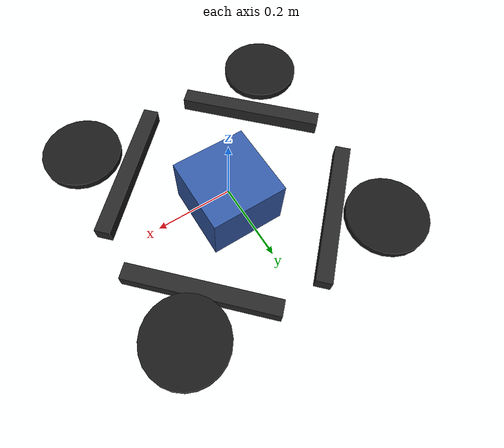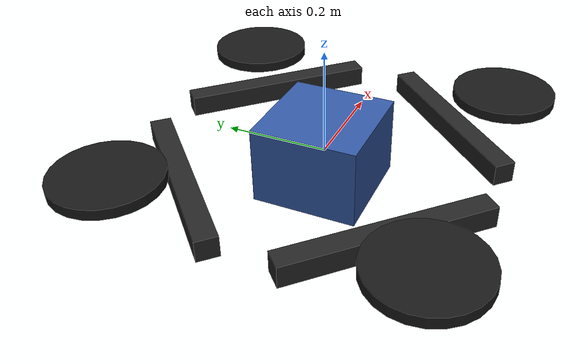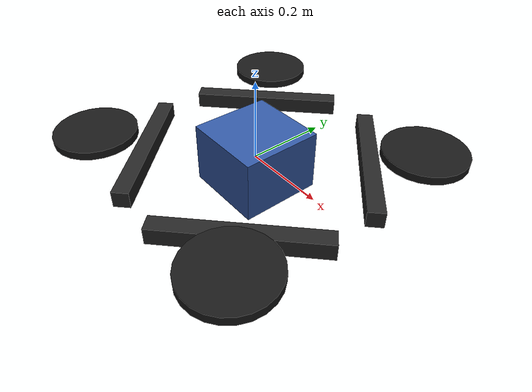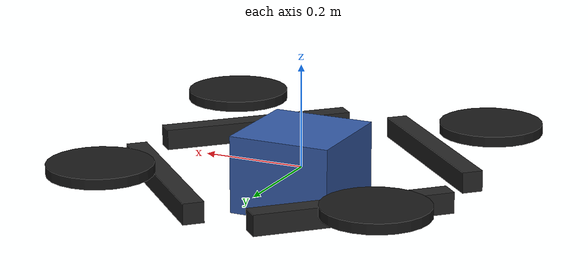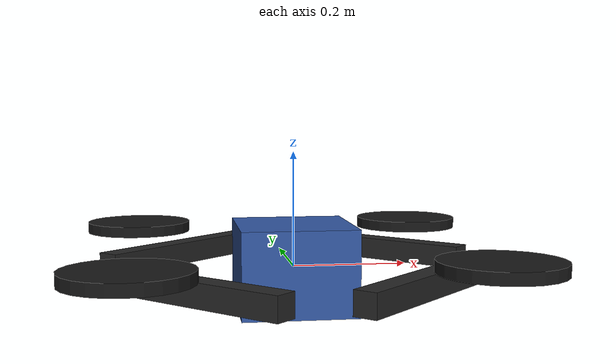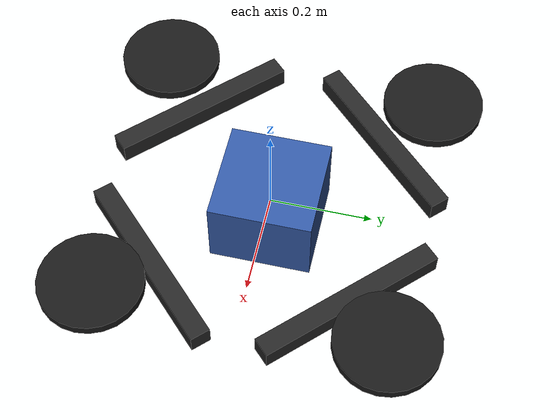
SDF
<?xml version="1.0"?>
<sdf version="1.6">
  <model name="drop_uav">

    <link name="base_link">

      <!-- ── Inertia (X500: mass 2 kg, box approximation) ──────────────── -->
      <inertial>
        <mass>2.0</mass>
        <pose>0 0 0 0 0 0</pose>
        <inertia>
          <!-- Solid box: I = m/12 * (a²+b²) -->
          <ixx>0.0256</ixx>
          <iyy>0.0256</iyy>
          <izz>0.0504</izz>
          <ixy>0</ixy>
          <ixz>0</ixz>
          <iyz>0</iyz>
        </inertia>
      </inertial>

      <!-- ── Collision geometry (main body box) ────────────────────────── -->
      <collision name="collision">
        <geometry>
          <box><size>0.55 0.55 0.15</size></box>
        </geometry>
        <surface>
          <friction>
            <ode><mu>0.5</mu><mu2>0.5</mu2></ode>
          </friction>
          <contact>
            <ode>
              <!-- Soft contact: realistic for composite UAV frame -->
              <kp>1e5</kp>
              <kd>1e3</kd>
            </ode>
          </contact>
        </surface>
      </collision>

      <!-- ── Visuals ───────────────────────────────────────────────────── -->

      <!-- Central body -->
      <visual name="body">
        <geometry>
          <box><size>0.20 0.20 0.15</size></box>
        </geometry>
        <material>
          <ambient>0.20 0.35 0.65 1</ambient>
          <diffuse>0.20 0.35 0.65 1</diffuse>
          <specular>0.1 0.1 0.1 1</specular>
        </material>
      </visual>

      <!-- Arm: front-right -->
      <visual name="arm_fr">
        <pose>0.19 -0.19 0 0 0 0.785</pose>
        <geometry><box><size>0.38 0.04 0.04</size></box></geometry>
        <material><ambient>0.15 0.15 0.15 1</ambient></material>
      </visual>
      <!-- Arm: front-left -->
      <visual name="arm_fl">
        <pose>0.19 0.19 0 0 0 -0.785</pose>
        <geometry><box><size>0.38 0.04 0.04</size></box></geometry>
        <material><ambient>0.15 0.15 0.15 1</ambient></material>
      </visual>
      <!-- Arm: rear-right -->
      <visual name="arm_rr">
        <pose>-0.19 -0.19 0 0 0 -0.785</pose>
        <geometry><box><size>0.38 0.04 0.04</size></box></geometry>
        <material><ambient>0.15 0.15 0.15 1</ambient></material>
      </visual>
      <!-- Arm: rear-left -->
      <visual name="arm_rl">
        <pose>-0.19 0.19 0 0 0 0.785</pose>
        <geometry><box><size>0.38 0.04 0.04</size></box></geometry>
        <material><ambient>0.15 0.15 0.15 1</ambient></material>
      </visual>

      <!-- Motor discs (four) -->
      <visual name="motor_fr">
        <pose>0.275 -0.275 0.04 0 0 0</pose>
        <geometry><cylinder><radius>0.10</radius><length>0.02</length></cylinder></geometry>
        <material><ambient>0.1 0.1 0.1 1</ambient></material>
      </visual>
      <visual name="motor_fl">
        <pose>0.275 0.275 0.04 0 0 0</pose>
        <geometry><cylinder><radius>0.10</radius><length>0.02</length></cylinder></geometry>
        <material><ambient>0.1 0.1 0.1 1</ambient></material>
      </visual>
      <visual name="motor_rr">
        <pose>-0.275 -0.275 0.04 0 0 0</pose>
        <geometry><cylinder><radius>0.10</radius><length>0.02</length></cylinder></geometry>
        <material><ambient>0.1 0.1 0.1 1</ambient></material>
      </visual>
      <visual name="motor_rl">
        <pose>-0.275 0.275 0.04 0 0 0</pose>
        <geometry><cylinder><radius>0.10</radius><length>0.02</length></cylinder></geometry>
        <material><ambient>0.1 0.1 0.1 1</ambient></material>
      </visual>

    </link>
  </model>
</sdf>
